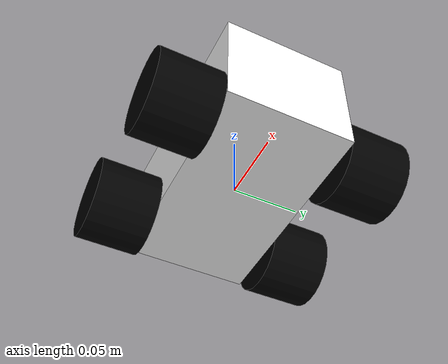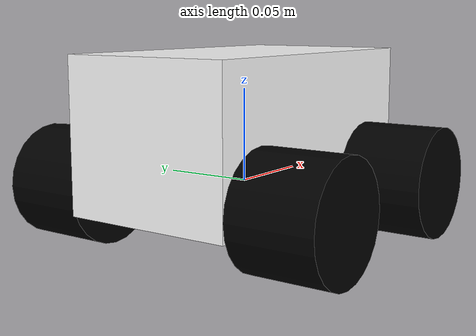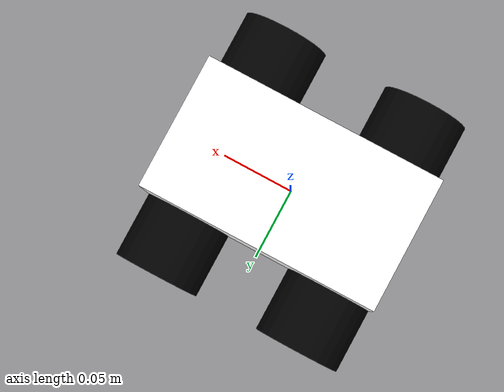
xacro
<?xml version="1.0"?>
<robot xmlns:xacro="http://www.ros.org/wiki/xacro" >

    <xacro:include filename="inertial_macros.xacro"/>

    <xacro:property name="chassis_length" value="0.165"/>
    <xacro:property name="chassis_width" value="0.092"/>
    <xacro:property name="chassis_height" value="0.080"/>
    <xacro:property name="chassis_mass" value="2.0"/>
    <xacro:property name="wheel_radius" value="0.030"/>
    <xacro:property name="wheel_thickness" value="0.045"/>
    <xacro:property name="wheel_mass" value="0.1"/>
    <xacro:property name="wheel_offset_x" value="0.0525"/>
    <xacro:property name="wheel_offset_y" value="0.0685"/>
    <xacro:property name="wheel_offset_z" value="0.01"/>

    <material name="white">
        <color rgba="1 1 1 1" />
    </material>

    <material name="orange">
        <color rgba="1 0.3 0.1 1"/>
    </material>

    <material name="blue">
        <color rgba="0.2 0.2 1 1"/>
    </material>

    <material name="black">
        <color rgba="0 0 0 1"/>
    </material>

    <material name="red">
        <color rgba="1 0 0 1"/>
    </material>

    <!-- BASE LINK -->

    <link name="base_link">

    </link>

    <!-- BASE_FOOTPRINT LINK -->

    <joint name="base_footprint_joint" type="fixed">
        <parent link="base_link"/>
        <child link="base_footprint"/>
        <origin xyz="0 0 0" rpy="0 0 0"/>
    </joint>

    <link name="base_footprint">
    </link>

    <!-- CHASSIS LINK -->

    <joint name="chassis_joint" type="fixed">
        <parent link="base_link"/>
        <child link="chassis"/>
        <origin xyz="${-chassis_length/2} 0 ${-wheel_offset_z}"/>
    </joint>

    <link name="chassis">
        <visual>
            <origin xyz="${chassis_length/2} 0 ${chassis_height/2}"/>
            <geometry>
                <box size="${chassis_length} ${chassis_width} ${chassis_height}"/>
            </geometry>
            <material name="white"/>
        </visual>
        <collision>
            <origin xyz="${chassis_length/2} 0 ${chassis_height/2}"/>
            <geometry>
                <box size="${chassis_length} ${chassis_width} ${chassis_height}"/>
            </geometry>
        </collision>
        <xacro:inertial_box mass="0.5" x="${chassis_length}" y="${chassis_width}" z="${chassis_height}">
            <origin xyz="${chassis_length/2} 0 ${chassis_height/2}" rpy="0 0 0"/>
        </xacro:inertial_box>
    </link>

    <gazebo reference="chassis">
        <material>Gazebo/White</material>
    </gazebo>

    <!-- LEFT WHEEL_2 LINK -->

    <joint name="left_wheel_2_joint" type="fixed">
        <parent link="base_link"/>
        <child link="left_wheel_2"/>
        <origin xyz="${-wheel_offset_x} ${-wheel_offset_y} 0" rpy="-${pi/2} 0 0" />
        <axis xyz="0 0 1"/>
    </joint>

    <link name="left_wheel_2">
        <visual>
            <geometry>
                <cylinder radius="${wheel_radius}" length="${wheel_thickness}"/>
            </geometry>
            <material name="black"/>
        </visual>
        <collision>
            <geometry>
                <sphere radius="${wheel_radius}"/>
            </geometry>
        </collision>
        <xacro:inertial_cylinder mass="${wheel_mass}" length="${wheel_thickness}" radius="${wheel_radius}">
            <origin xyz="0 0 0" rpy="0 0 0"/>
        </xacro:inertial_cylinder>
    </link>

    <gazebo reference="left_wheel_2">
        <material>Gazebo/Black</material>
    </gazebo>

    <!-- LEFT WHEEL LINK -->

    <joint name="left_wheel_joint" type="continuous">
        <parent link="base_link"/>
        <child link="left_wheel"/>
        <origin xyz="${wheel_offset_x} ${-wheel_offset_y} 0" rpy="-${pi/2} 0 0" />
        <axis xyz="0 0 1"/>
    </joint>

    <link name="left_wheel">
        <visual>
            <geometry>
                <cylinder radius="${wheel_radius}" length="${wheel_thickness}"/>
            </geometry>
            <material name="black"/>
        </visual>
        <collision>
            <geometry>
                <sphere radius="${wheel_radius}"/>
            </geometry>
        </collision>
        <xacro:inertial_cylinder mass="${wheel_mass}" length="${wheel_thickness}" radius="${wheel_radius}">
            <origin xyz="0 0 0" rpy="0 0 0"/>
        </xacro:inertial_cylinder>
    </link>

    <gazebo reference="left_wheel">
        <material>Gazebo/Black</material>
    </gazebo>

    <!-- RIGHT WHEEL_2 LINK -->

    <joint name="right_wheel_2_joint" type="fixed">
        <parent link="base_link"/>
        <child link="right_wheel_2"/>
        <origin xyz="${wheel_offset_x} ${wheel_offset_y} 0" rpy="${pi/2} 0 0" />
        <axis xyz="0 0 -1"/>
    </joint>

    <link name="right_wheel_2">
        <visual>
            <geometry>
                <cylinder radius="${wheel_radius}" length="${wheel_thickness}"/>
            </geometry>
            <material name="black"/>
        </visual>
        <collision>
            <geometry>
                <sphere radius="${wheel_radius}"/>
            </geometry>
        </collision>
        <xacro:inertial_cylinder mass="${wheel_mass}" length="${wheel_thickness}" radius="${wheel_radius}">
            <origin xyz="0 0 0" rpy="0 0 0"/>
        </xacro:inertial_cylinder>
    </link>

    <gazebo reference="right_wheel_2">
        <material>Gazebo/Black</material>
    </gazebo>

   <!-- RIGHT WHEEL LINK -->

    <joint name="right_wheel_joint" type="continuous">
        <parent link="base_link"/>
        <child link="right_wheel"/>
        <origin xyz="${-wheel_offset_x} ${wheel_offset_y} 0" rpy="${pi/2} 0 0" />
        <axis xyz="0 0 -1"/>
    </joint>

    <link name="right_wheel">
        <visual>
            <geometry>
                <cylinder radius="${wheel_radius}" length="${wheel_thickness}"/>
            </geometry>
            <material name="black"/>
        </visual>
        <collision>
            <geometry>
                <sphere radius="${wheel_radius}"/>
            </geometry>
        </collision>
        <xacro:inertial_cylinder mass="${wheel_mass}" length="${wheel_thickness}" radius="${wheel_radius}">
            <origin xyz="0 0 0" rpy="0 0 0"/>
        </xacro:inertial_cylinder>
    </link>

    <gazebo reference="right_wheel">
        <material>Gazebo/Black</material>
    </gazebo>

    <!-- CASTER WHEEL LINK -->

</robot>
